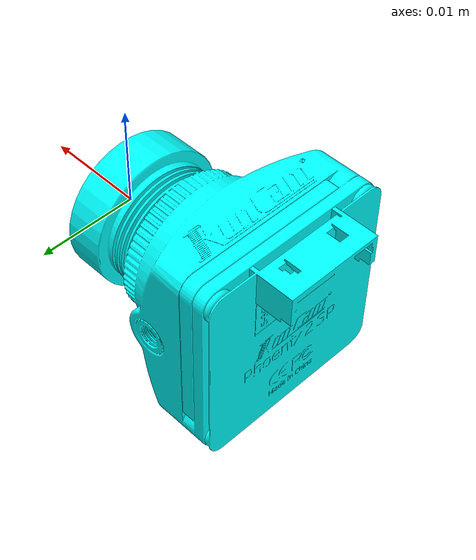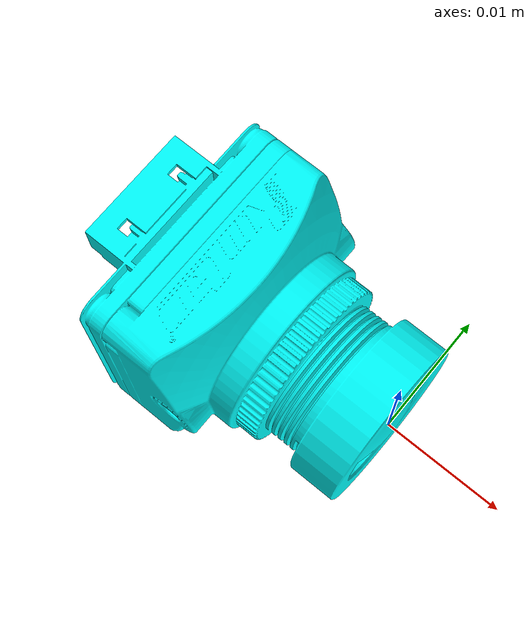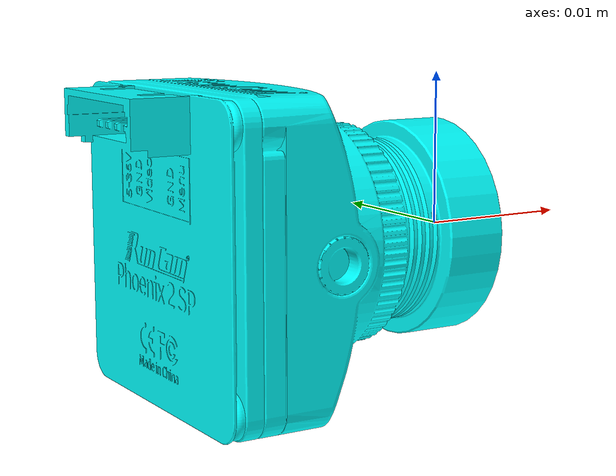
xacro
<?xml version="1.0"?>
<robot name="test_fpv_cam" xmlns:xacro="http://www.ros.org/wiki/xacro">

  <xacro:arg name="package_name" default="fpv_drone" />
  <xacro:arg name="namespace" default="fpv_drone" />

  <xacro:property name="package_name" value="$(arg package_name)" />
  <xacro:property name="namespace" value="$(arg namespace)" />

  <xacro:property name="parent_link" value="${namespace}_footprint" />

  <xacro:include filename="$(find fpv_drone)/urdf/macro_fpv_cam.xacro" />

  <link name="${parent_link}">
    <inertial>
      <mass value="0.01" />
      <origin xyz="0 0 0" />
      <inertia ixx="1e-6" ixy="0.0" ixz="0.0" iyy="1e-6" iyz="0.0" izz="1e-6" />
    </inertial>

    <collision name="${parent_link}_collision">
      <geometry>
        <box size="0.06 0.06 0.04" />
      </geometry>
      <origin xyz="0 0 0" />
    </collision>
  </link>

  <xacro:macro_fpv_cam package_name="${package_name}" parent_link="${parent_link}"
    namespace="${namespace}" />

</robot>

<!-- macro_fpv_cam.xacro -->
<robot xmlns:xacro="http://www.ros.org/wiki/xacro">

  <xacro:macro name="macro_fpv_cam"
    params="package_name:='fpv_drone' namespace:='fpv_drone' parent_link:='fpv_drone_footprint' rgb:='0 1 1' rpy:='0 0 0' xyz:='0 0 0'">

    <link name="${namespace}_cam_link">
      <inertial>
        <origin xyz="0 0 0" rpy="0 0 0" />
        <mass value="0.005036186" />
        <inertia ixx="2.2237e-07" ixy="5.4652e-12" ixz="2.2453e-12" iyy="1.3962e-07"
          iyz="-2.5999e-10" izz="1.4067e-07" />
      </inertial>

      <visual name="${namespace}_cam_visual">
        <origin xyz="0 0 0" rpy="0 0 0" />
        <geometry>
          <mesh filename="package://${package_name}/meshes/fpv_drone/fpv_cam.stl" scale="1 1 1" />
        </geometry>
        <material name="${namespace}_cam_material">
          <color rgba="${rgb} 1" />
        </material>
      </visual>

      <collision name="${namespace}_cam_collision">
        <origin xyz="0 0 0" rpy="0 0 0" />
        <geometry>
          <mesh filename="package://${package_name}/meshes/fpv_drone/fpv_cam.stl" scale="1 1 1" />
        </geometry>
      </collision>
    </link>

    <gazebo reference="${namespace}_cam_link">
      <visual name="${namespace}_cam_visual">
        <material>
          <diffuse>${rgb} 1</diffuse>
          <ambient>${rgb} 1</ambient>
          <specular>1 1 1 1</specular>
        </material>
      </visual>
    </gazebo>

    <joint name="${namespace}_cam_joint" type="fixed">
      <parent link="${parent_link}" />
      <child link="${namespace}_cam_link" />
      <origin xyz="${xyz}" rpy="${rpy}" />
    </joint>

    <gazebo>
      <plugin
        filename="gz-sim-joint-state-publisher-system"
        name="gz::sim::systems::JointStatePublisher">
      </plugin>
    </gazebo>
  </xacro:macro>
</robot>
